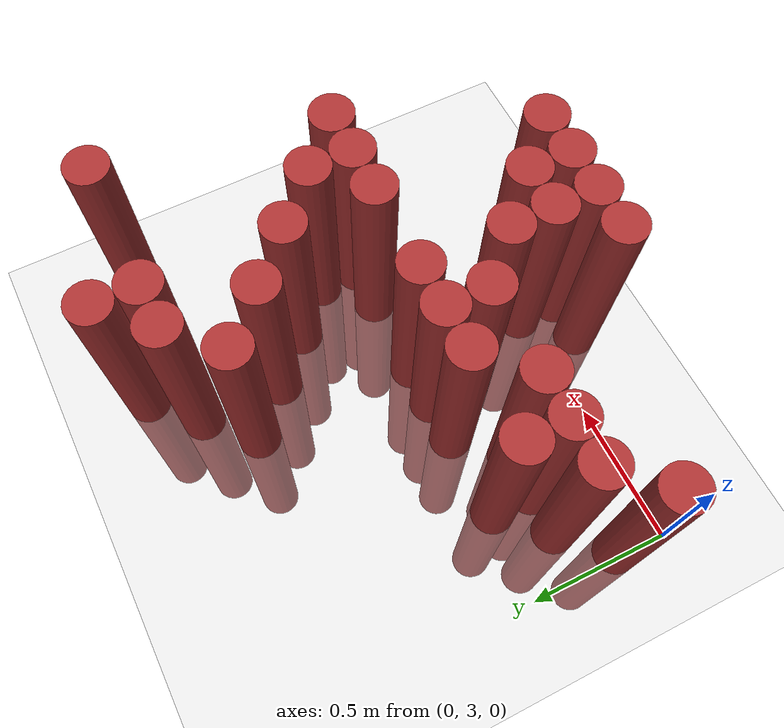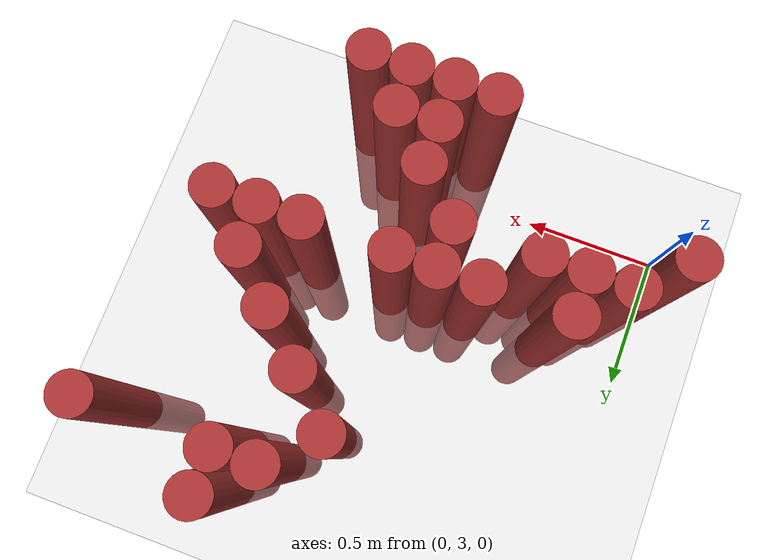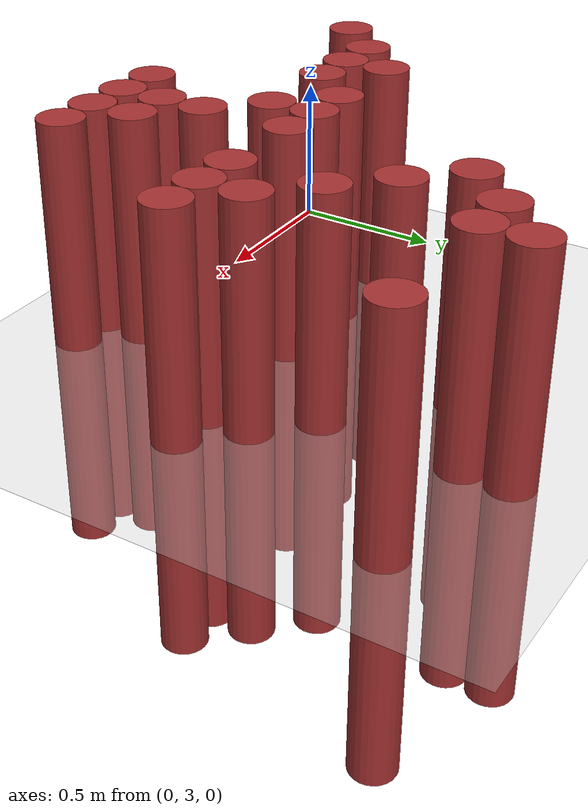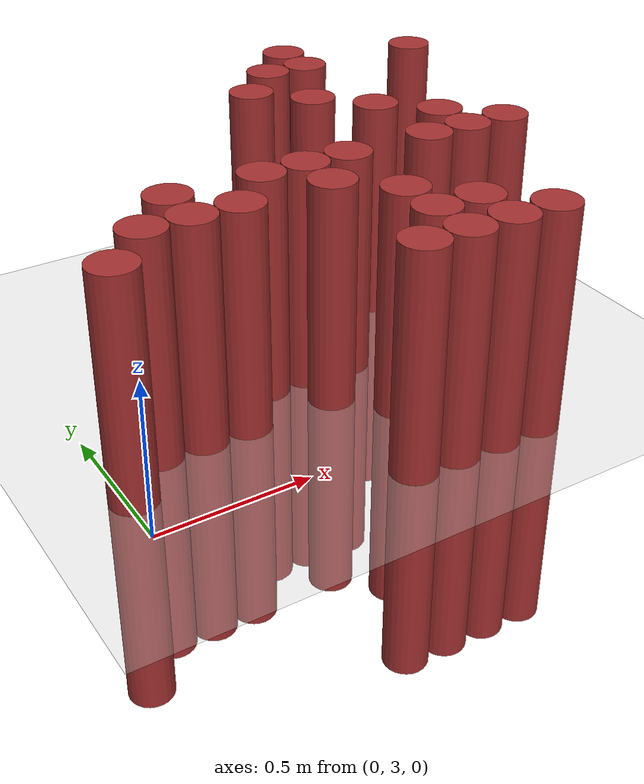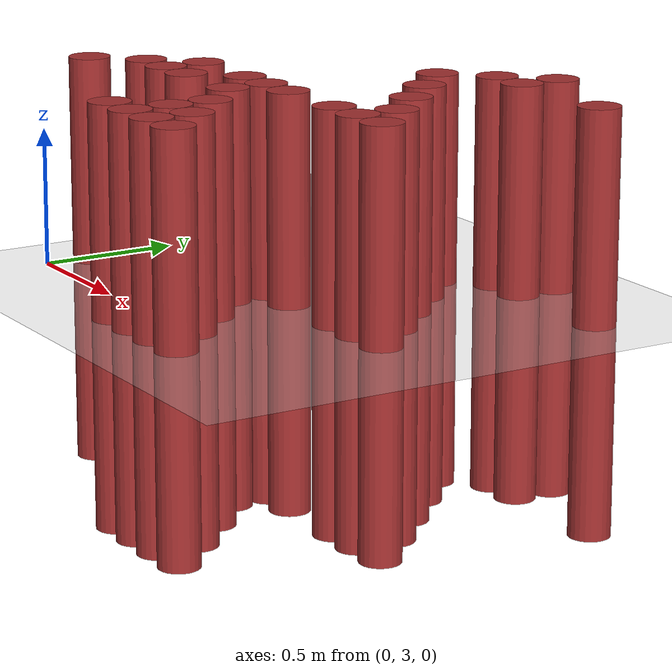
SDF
<sdf version="1.6">
 <world name="default">
  <model name="ground_plane">
   <static>1</static>
   <link name="link">
    <collision name="collision">
     <geometry><plane><normal>0 0 1</normal><size>100 100</size></plane></geometry>
     <surface><friction><ode><mu>100</mu><mu2>50</mu2></ode></friction></surface>
    </collision>
    <visual name="visual">
     <cast_shadows>0</cast_shadows>
     <geometry><plane><normal>0 0 1</normal><size>100 100</size></plane></geometry>
     <material>
      <script><uri>file://media/materials/scripts/gazebo.material</uri><name>Gazebo/Grey</name></script>
     </material>
    </visual>
   </link>
  </model>
  <model name="unit_cylinder_167">
   <static>1</static>
   <pose>0.025000 3.175000 0.000000 0.000000 0.000000 0.000000</pose>
   <link name="link">
    <inertial>
     <mass>1</mass>
     <inertia><ixx>0.145833</ixx><ixy>0</ixy><ixz>0</ixz><iyy>0.145833</iyy><iyz>0</iyz><izz>0.125</izz></inertia>
    </inertial>
    <collision name="collision">
     <geometry><cylinder><radius>0.075000</radius><length>1.5</length></cylinder></geometry>
    </collision>
    <visual name="visual">
     <geometry><cylinder><radius>0.075000</radius><length>1.5</length></cylinder></geometry>
     <material>
      <ambient>0.648000 0.192000 0.192000 1</ambient>
      <diffuse>0.648000 0.192000 0.192000 1</diffuse>
     </material>
     <material>
      <script><name>Gazebo/Grey</name><uri>file://media/materials/scripts/gazebo.material</uri></script>
     </material>
    </visual>
   </link>
  </model>
  <model name="unit_cylinder_168">
   <static>1</static>
   <pose>0.175000 3.325000 0.000000 0.000000 0.000000 0.000000</pose>
   <link name="link">
    <inertial>
     <mass>1</mass>
     <inertia><ixx>0.145833</ixx><ixy>0</ixy><ixz>0</ixz><iyy>0.145833</iyy><iyz>0</iyz><izz>0.125</izz></inertia>
    </inertial>
    <collision name="collision">
     <geometry><cylinder><radius>0.075000</radius><length>1.5</length></cylinder></geometry>
    </collision>
    <visual name="visual">
     <geometry><cylinder><radius>0.075000</radius><length>1.5</length></cylinder></geometry>
     <material>
      <ambient>0.648000 0.192000 0.192000 1</ambient>
      <diffuse>0.648000 0.192000 0.192000 1</diffuse>
     </material>
     <material>
      <script><name>Gazebo/Grey</name><uri>file://media/materials/scripts/gazebo.material</uri></script>
     </material>
    </visual>
   </link>
  </model>
  <model name="unit_cylinder_169">
   <static>1</static>
   <pose>0.325000 3.325000 0.000000 0.000000 0.000000 0.000000</pose>
   <link name="link">
    <inertial>
     <mass>1</mass>
     <inertia><ixx>0.145833</ixx><ixy>0</ixy><ixz>0</ixz><iyy>0.145833</iyy><iyz>0</iyz><izz>0.125</izz></inertia>
    </inertial>
    <collision name="collision">
     <geometry><cylinder><radius>0.075000</radius><length>1.5</length></cylinder></geometry>
    </collision>
    <visual name="visual">
     <geometry><cylinder><radius>0.075000</radius><length>1.5</length></cylinder></geometry>
     <material>
      <ambient>0.648000 0.192000 0.192000 1</ambient>
      <diffuse>0.648000 0.192000 0.192000 1</diffuse>
     </material>
     <material>
      <script><name>Gazebo/Grey</name><uri>file://media/materials/scripts/gazebo.material</uri></script>
     </material>
    </visual>
   </link>
  </model>
  <model name="unit_cylinder_170">
   <static>1</static>
   <pose>0.325000 3.475000 0.000000 0.000000 0.000000 0.000000</pose>
   <link name="link">
    <inertial>
     <mass>1</mass>
     <inertia><ixx>0.145833</ixx><ixy>0</ixy><ixz>0</ixz><iyy>0.145833</iyy><iyz>0</iyz><izz>0.125</izz></inertia>
    </inertial>
    <collision name="collision">
     <geometry><cylinder><radius>0.075000</radius><length>1.5</length></cylinder></geometry>
    </collision>
    <visual name="visual">
     <geometry><cylinder><radius>0.075000</radius><length>1.5</length></cylinder></geometry>
     <material>
      <ambient>0.648000 0.192000 0.192000 1</ambient>
      <diffuse>0.648000 0.192000 0.192000 1</diffuse>
     </material>
     <material>
      <script><name>Gazebo/Grey</name><uri>file://media/materials/scripts/gazebo.material</uri></script>
     </material>
    </visual>
   </link>
  </model>
  <model name="unit_cylinder_171">
   <static>1</static>
   <pose>0.475000 3.325000 0.000000 0.000000 0.000000 0.000000</pose>
   <link name="link">
    <inertial>
     <mass>1</mass>
     <inertia><ixx>0.145833</ixx><ixy>0</ixy><ixz>0</ixz><iyy>0.145833</iyy><iyz>0</iyz><izz>0.125</izz></inertia>
    </inertial>
    <collision name="collision">
     <geometry><cylinder><radius>0.075000</radius><length>1.5</length></cylinder></geometry>
    </collision>
    <visual name="visual">
     <geometry><cylinder><radius>0.075000</radius><length>1.5</length></cylinder></geometry>
     <material>
      <ambient>0.648000 0.192000 0.192000 1</ambient>
      <diffuse>0.648000 0.192000 0.192000 1</diffuse>
     </material>
     <material>
      <script><name>Gazebo/Grey</name><uri>file://media/materials/scripts/gazebo.material</uri></script>
     </material>
    </visual>
   </link>
  </model>
  <model name="unit_cylinder_172">
   <static>1</static>
   <pose>0.625000 3.475000 0.000000 0.000000 0.000000 0.000000</pose>
   <link name="link">
    <inertial>
     <mass>1</mass>
     <inertia><ixx>0.145833</ixx><ixy>0</ixy><ixz>0</ixz><iyy>0.145833</iyy><iyz>0</iyz><izz>0.125</izz></inertia>
    </inertial>
    <collision name="collision">
     <geometry><cylinder><radius>0.075000</radius><length>1.5</length></cylinder></geometry>
    </collision>
    <visual name="visual">
     <geometry><cylinder><radius>0.075000</radius><length>1.5</length></cylinder></geometry>
     <material>
      <ambient>0.648000 0.192000 0.192000 1</ambient>
      <diffuse>0.648000 0.192000 0.192000 1</diffuse>
     </material>
     <material>
      <script><name>Gazebo/Grey</name><uri>file://media/materials/scripts/gazebo.material</uri></script>
     </material>
    </visual>
   </link>
  </model>
  <model name="unit_cylinder_173">
   <static>1</static>
   <pose>0.775000 2.875000 0.000000 0.000000 0.000000 0.000000</pose>
   <link name="link">
    <inertial>
     <mass>1</mass>
     <inertia><ixx>0.145833</ixx><ixy>0</ixy><ixz>0</ixz><iyy>0.145833</iyy><iyz>0</iyz><izz>0.125</izz></inertia>
    </inertial>
    <collision name="collision">
     <geometry><cylinder><radius>0.075000</radius><length>1.5</length></cylinder></geometry>
    </collision>
    <visual name="visual">
     <geometry><cylinder><radius>0.075000</radius><length>1.5</length></cylinder></geometry>
     <material>
      <ambient>0.648000 0.192000 0.192000 1</ambient>
      <diffuse>0.648000 0.192000 0.192000 1</diffuse>
     </material>
     <material>
      <script><name>Gazebo/Grey</name><uri>file://media/materials/scripts/gazebo.material</uri></script>
     </material>
    </visual>
   </link>
  </model>
  <model name="unit_cylinder_174">
   <static>1</static>
   <pose>0.775000 3.325000 0.000000 0.000000 0.000000 0.000000</pose>
   <link name="link">
    <inertial>
     <mass>1</mass>
     <inertia><ixx>0.145833</ixx><ixy>0</ixy><ixz>0</ixz><iyy>0.145833</iyy><iyz>0</iyz><izz>0.125</izz></inertia>
    </inertial>
    <collision name="collision">
     <geometry><cylinder><radius>0.075000</radius><length>1.5</length></cylinder></geometry>
    </collision>
    <visual name="visual">
     <geometry><cylinder><radius>0.075000</radius><length>1.5</length></cylinder></geometry>
     <material>
      <ambient>0.648000 0.192000 0.192000 1</ambient>
      <diffuse>0.648000 0.192000 0.192000 1</diffuse>
     </material>
     <material>
      <script><name>Gazebo/Grey</name><uri>file://media/materials/scripts/gazebo.material</uri></script>
     </material>
    </visual>
   </link>
  </model>
  <model name="unit_cylinder_175">
   <static>1</static>
   <pose>0.775000 3.475000 0.000000 0.000000 0.000000 0.000000</pose>
   <link name="link">
    <inertial>
     <mass>1</mass>
     <inertia><ixx>0.145833</ixx><ixy>0</ixy><ixz>0</ixz><iyy>0.145833</iyy><iyz>0</iyz><izz>0.125</izz></inertia>
    </inertial>
    <collision name="collision">
     <geometry><cylinder><radius>0.075000</radius><length>1.5</length></cylinder></geometry>
    </collision>
    <visual name="visual">
     <geometry><cylinder><radius>0.075000</radius><length>1.5</length></cylinder></geometry>
     <material>
      <ambient>0.648000 0.192000 0.192000 1</ambient>
      <diffuse>0.648000 0.192000 0.192000 1</diffuse>
     </material>
     <material>
      <script><name>Gazebo/Grey</name><uri>file://media/materials/scripts/gazebo.material</uri></script>
     </material>
    </visual>
   </link>
  </model>
  <model name="unit_cylinder_177">
   <static>1</static>
   <pose>0.925000 2.875000 0.000000 0.000000 0.000000 0.000000</pose>
   <link name="link">
    <inertial>
     <mass>1</mass>
     <inertia><ixx>0.145833</ixx><ixy>0</ixy><ixz>0</ixz><iyy>0.145833</iyy><iyz>0</iyz><izz>0.125</izz></inertia>
    </inertial>
    <collision name="collision">
     <geometry><cylinder><radius>0.075000</radius><length>1.5</length></cylinder></geometry>
    </collision>
    <visual name="visual">
     <geometry><cylinder><radius>0.075000</radius><length>1.5</length></cylinder></geometry>
     <material>
      <ambient>0.648000 0.192000 0.192000 1</ambient>
      <diffuse>0.648000 0.192000 0.192000 1</diffuse>
     </material>
     <material>
      <script><name>Gazebo/Grey</name><uri>file://media/materials/scripts/gazebo.material</uri></script>
     </material>
    </visual>
   </link>
  </model>
  <model name="unit_cylinder_178">
   <static>1</static>
   <pose>0.925000 3.025000 0.000000 0.000000 0.000000 0.000000</pose>
   <link name="link">
    <inertial>
     <mass>1</mass>
     <inertia><ixx>0.145833</ixx><ixy>0</ixy><ixz>0</ixz><iyy>0.145833</iyy><iyz>0</iyz><izz>0.125</izz></inertia>
    </inertial>
    <collision name="collision">
     <geometry><cylinder><radius>0.075000</radius><length>1.5</length></cylinder></geometry>
    </collision>
    <visual name="visual">
     <geometry><cylinder><radius>0.075000</radius><length>1.5</length></cylinder></geometry>
     <material>
      <ambient>0.648000 0.192000 0.192000 1</ambient>
      <diffuse>0.648000 0.192000 0.192000 1</diffuse>
     </material>
     <material>
      <script><name>Gazebo/Grey</name><uri>file://media/materials/scripts/gazebo.material</uri></script>
     </material>
    </visual>
   </link>
  </model>
  <model name="unit_cylinder_179">
   <static>1</static>
   <pose>0.925000 3.175000 0.000000 0.000000 0.000000 0.000000</pose>
   <link name="link">
    <inertial>
     <mass>1</mass>
     <inertia><ixx>0.145833</ixx><ixy>0</ixy><ixz>0</ixz><iyy>0.145833</iyy><iyz>0</iyz><izz>0.125</izz></inertia>
    </inertial>
    <collision name="collision">
     <geometry><cylinder><radius>0.075000</radius><length>1.5</length></cylinder></geometry>
    </collision>
    <visual name="visual">
     <geometry><cylinder><radius>0.075000</radius><length>1.5</length></cylinder></geometry>
     <material>
      <ambient>0.648000 0.192000 0.192000 1</ambient>
      <diffuse>0.648000 0.192000 0.192000 1</diffuse>
     </material>
     <material>
      <script><name>Gazebo/Grey</name><uri>file://media/materials/scripts/gazebo.material</uri></script>
     </material>
    </visual>
   </link>
  </model>
  <model name="unit_cylinder_180">
   <static>1</static>
   <pose>0.925000 3.475000 0.000000 0.000000 0.000000 0.000000</pose>
   <link name="link">
    <inertial>
     <mass>1</mass>
     <inertia><ixx>0.145833</ixx><ixy>0</ixy><ixz>0</ixz><iyy>0.145833</iyy><iyz>0</iyz><izz>0.125</izz></inertia>
    </inertial>
    <collision name="collision">
     <geometry><cylinder><radius>0.075000</radius><length>1.5</length></cylinder></geometry>
    </collision>
    <visual name="visual">
     <geometry><cylinder><radius>0.075000</radius><length>1.5</length></cylinder></geometry>
     <material>
      <ambient>0.648000 0.192000 0.192000 1</ambient>
      <diffuse>0.648000 0.192000 0.192000 1</diffuse>
     </material>
     <material>
      <script><name>Gazebo/Grey</name><uri>file://media/materials/scripts/gazebo.material</uri></script>
     </material>
    </visual>
   </link>
  </model>
  <model name="unit_cylinder_181">
   <static>1</static>
   <pose>0.925000 4.075000 0.000000 0.000000 0.000000 0.000000</pose>
   <link name="link">
    <inertial>
     <mass>1</mass>
     <inertia><ixx>0.145833</ixx><ixy>0</ixy><ixz>0</ixz><iyy>0.145833</iyy><iyz>0</iyz><izz>0.125</izz></inertia>
    </inertial>
    <collision name="collision">
     <geometry><cylinder><radius>0.075000</radius><length>1.5</length></cylinder></geometry>
    </collision>
    <visual name="visual">
     <geometry><cylinder><radius>0.075000</radius><length>1.5</length></cylinder></geometry>
     <material>
      <ambient>0.648000 0.192000 0.192000 1</ambient>
      <diffuse>0.648000 0.192000 0.192000 1</diffuse>
     </material>
     <material>
      <script><name>Gazebo/Grey</name><uri>file://media/materials/scripts/gazebo.material</uri></script>
     </material>
    </visual>
   </link>
  </model>
  <model name="unit_cylinder_185">
   <static>1</static>
   <pose>1.075000 2.875000 0.000000 0.000000 0.000000 0.000000</pose>
   <link name="link">
    <inertial>
     <mass>1</mass>
     <inertia><ixx>0.145833</ixx><ixy>0</ixy><ixz>0</ixz><iyy>0.145833</iyy><iyz>0</iyz><izz>0.125</izz></inertia>
    </inertial>
    <collision name="collision">
     <geometry><cylinder><radius>0.075000</radius><length>1.5</length></cylinder></geometry>
    </collision>
    <visual name="visual">
     <geometry><cylinder><radius>0.075000</radius><length>1.5</length></cylinder></geometry>
     <material>
      <ambient>0.648000 0.192000 0.192000 1</ambient>
      <diffuse>0.648000 0.192000 0.192000 1</diffuse>
     </material>
     <material>
      <script><name>Gazebo/Grey</name><uri>file://media/materials/scripts/gazebo.material</uri></script>
     </material>
    </visual>
   </link>
  </model>
  <model name="unit_cylinder_186">
   <static>1</static>
   <pose>1.075000 3.025000 0.000000 0.000000 0.000000 0.000000</pose>
   <link name="link">
    <inertial>
     <mass>1</mass>
     <inertia><ixx>0.145833</ixx><ixy>0</ixy><ixz>0</ixz><iyy>0.145833</iyy><iyz>0</iyz><izz>0.125</izz></inertia>
    </inertial>
    <collision name="collision">
     <geometry><cylinder><radius>0.075000</radius><length>1.5</length></cylinder></geometry>
    </collision>
    <visual name="visual">
     <geometry><cylinder><radius>0.075000</radius><length>1.5</length></cylinder></geometry>
     <material>
      <ambient>0.648000 0.192000 0.192000 1</ambient>
      <diffuse>0.648000 0.192000 0.192000 1</diffuse>
     </material>
     <material>
      <script><name>Gazebo/Grey</name><uri>file://media/materials/scripts/gazebo.material</uri></script>
     </material>
    </visual>
   </link>
  </model>
  <model name="unit_cylinder_187">
   <static>1</static>
   <pose>1.075000 3.925000 0.000000 0.000000 0.000000 0.000000</pose>
   <link name="link">
    <inertial>
     <mass>1</mass>
     <inertia><ixx>0.145833</ixx><ixy>0</ixy><ixz>0</ixz><iyy>0.145833</iyy><iyz>0</iyz><izz>0.125</izz></inertia>
    </inertial>
    <collision name="collision">
     <geometry><cylinder><radius>0.075000</radius><length>1.5</length></cylinder></geometry>
    </collision>
    <visual name="visual">
     <geometry><cylinder><radius>0.075000</radius><length>1.5</length></cylinder></geometry>
     <material>
      <ambient>0.648000 0.192000 0.192000 1</ambient>
      <diffuse>0.648000 0.192000 0.192000 1</diffuse>
     </material>
     <material>
      <script><name>Gazebo/Grey</name><uri>file://media/materials/scripts/gazebo.material</uri></script>
     </material>
    </visual>
   </link>
  </model>
  <model name="unit_cylinder_188">
   <static>1</static>
   <pose>1.075000 4.225000 0.000000 0.000000 0.000000 0.000000</pose>
   <link name="link">
    <inertial>
     <mass>1</mass>
     <inertia><ixx>0.145833</ixx><ixy>0</ixy><ixz>0</ixz><iyy>0.145833</iyy><iyz>0</iyz><izz>0.125</izz></inertia>
    </inertial>
    <collision name="collision">
     <geometry><cylinder><radius>0.075000</radius><length>1.5</length></cylinder></geometry>
    </collision>
    <visual name="visual">
     <geometry><cylinder><radius>0.075000</radius><length>1.5</length></cylinder></geometry>
     <material>
      <ambient>0.648000 0.192000 0.192000 1</ambient>
      <diffuse>0.648000 0.192000 0.192000 1</diffuse>
     </material>
     <material>
      <script><name>Gazebo/Grey</name><uri>file://media/materials/scripts/gazebo.material</uri></script>
     </material>
    </visual>
   </link>
  </model>
  <model name="unit_cylinder_191">
   <static>1</static>
   <pose>1.225000 2.875000 0.000000 0.000000 0.000000 0.000000</pose>
   <link name="link">
    <inertial>
     <mass>1</mass>
     <inertia><ixx>0.145833</ixx><ixy>0</ixy><ixz>0</ixz><iyy>0.145833</iyy><iyz>0</iyz><izz>0.125</izz></inertia>
    </inertial>
    <collision name="collision">
     <geometry><cylinder><radius>0.075000</radius><length>1.5</length></cylinder></geometry>
    </collision>
    <visual name="visual">
     <geometry><cylinder><radius>0.075000</radius><length>1.5</length></cylinder></geometry>
     <material>
      <ambient>0.648000 0.192000 0.192000 1</ambient>
      <diffuse>0.648000 0.192000 0.192000 1</diffuse>
     </material>
     <material>
      <script><name>Gazebo/Grey</name><uri>file://media/materials/scripts/gazebo.material</uri></script>
     </material>
    </visual>
   </link>
  </model>
  <model name="unit_cylinder_192">
   <static>1</static>
   <pose>1.225000 3.475000 0.000000 0.000000 0.000000 0.000000</pose>
   <link name="link">
    <inertial>
     <mass>1</mass>
     <inertia><ixx>0.145833</ixx><ixy>0</ixy><ixz>0</ixz><iyy>0.145833</iyy><iyz>0</iyz><izz>0.125</izz></inertia>
    </inertial>
    <collision name="collision">
     <geometry><cylinder><radius>0.075000</radius><length>1.5</length></cylinder></geometry>
    </collision>
    <visual name="visual">
     <geometry><cylinder><radius>0.075000</radius><length>1.5</length></cylinder></geometry>
     <material>
      <ambient>0.648000 0.192000 0.192000 1</ambient>
      <diffuse>0.648000 0.192000 0.192000 1</diffuse>
     </material>
     <material>
      <script><name>Gazebo/Grey</name><uri>file://media/materials/scripts/gazebo.material</uri></script>
     </material>
    </visual>
   </link>
  </model>
  <model name="unit_cylinder_193">
   <static>1</static>
   <pose>1.225000 3.775000 0.000000 0.000000 0.000000 0.000000</pose>
   <link name="link">
    <inertial>
     <mass>1</mass>
     <inertia><ixx>0.145833</ixx><ixy>0</ixy><ixz>0</ixz><iyy>0.145833</iyy><iyz>0</iyz><izz>0.125</izz></inertia>
    </inertial>
    <collision name="collision">
     <geometry><cylinder><radius>0.075000</radius><length>1.5</length></cylinder></geometry>
    </collision>
    <visual name="visual">
     <geometry><cylinder><radius>0.075000</radius><length>1.5</length></cylinder></geometry>
     <material>
      <ambient>0.648000 0.192000 0.192000 1</ambient>
      <diffuse>0.648000 0.192000 0.192000 1</diffuse>
     </material>
     <material>
      <script><name>Gazebo/Grey</name><uri>file://media/materials/scripts/gazebo.material</uri></script>
     </material>
    </visual>
   </link>
  </model>
  <model name="unit_cylinder_194">
   <static>1</static>
   <pose>1.225000 4.225000 0.000000 0.000000 0.000000 0.000000</pose>
   <link name="link">
    <inertial>
     <mass>1</mass>
     <inertia><ixx>0.145833</ixx><ixy>0</ixy><ixz>0</ixz><iyy>0.145833</iyy><iyz>0</iyz><izz>0.125</izz></inertia>
    </inertial>
    <collision name="collision">
     <geometry><cylinder><radius>0.075000</radius><length>1.5</length></cylinder></geometry>
    </collision>
    <visual name="visual">
     <geometry><cylinder><radius>0.075000</radius><length>1.5</length></cylinder></geometry>
     <material>
      <ambient>0.648000 0.192000 0.192000 1</ambient>
      <diffuse>0.648000 0.192000 0.192000 1</diffuse>
     </material>
     <material>
      <script><name>Gazebo/Grey</name><uri>file://media/materials/scripts/gazebo.material</uri></script>
     </material>
    </visual>
   </link>
  </model>
  <model name="unit_cylinder_195">
   <static>1</static>
   <pose>1.225000 4.375000 0.000000 0.000000 0.000000 0.000000</pose>
   <link name="link">
    <inertial>
     <mass>1</mass>
     <inertia><ixx>0.145833</ixx><ixy>0</ixy><ixz>0</ixz><iyy>0.145833</iyy><iyz>0</iyz><izz>0.125</izz></inertia>
    </inertial>
    <collision name="collision">
     <geometry><cylinder><radius>0.075000</radius><length>1.5</length></cylinder></geometry>
    </collision>
    <visual name="visual">
     <geometry><cylinder><radius>0.075000</radius><length>1.5</length></cylinder></geometry>
     <material>
      <ambient>0.648000 0.192000 0.192000 1</ambient>
      <diffuse>0.648000 0.192000 0.192000 1</diffuse>
     </material>
     <material>
      <script><name>Gazebo/Grey</name><uri>file://media/materials/scripts/gazebo.material</uri></script>
     </material>
    </visual>
   </link>
  </model>
  <model name="unit_cylinder_196">
   <static>1</static>
   <pose>1.375000 3.475000 0.000000 0.000000 0.000000 0.000000</pose>
   <link name="link">
    <inertial>
     <mass>1</mass>
     <inertia><ixx>0.145833</ixx><ixy>0</ixy><ixz>0</ixz><iyy>0.145833</iyy><iyz>0</iyz><izz>0.125</izz></inertia>
    </inertial>
    <collision name="collision">
     <geometry><cylinder><radius>0.075000</radius><length>1.5</length></cylinder></geometry>
    </collision>
    <visual name="visual">
     <geometry><cylinder><radius>0.075000</radius><length>1.5</length></cylinder></geometry>
     <material>
      <ambient>0.648000 0.192000 0.192000 1</ambient>
      <diffuse>0.648000 0.192000 0.192000 1</diffuse>
     </material>
     <material>
      <script><name>Gazebo/Grey</name><uri>file://media/materials/scripts/gazebo.material</uri></script>
     </material>
    </visual>
   </link>
  </model>
  <model name="unit_cylinder_197">
   <static>1</static>
   <pose>1.375000 3.625000 0.000000 0.000000 0.000000 0.000000</pose>
   <link name="link">
    <inertial>
     <mass>1</mass>
     <inertia><ixx>0.145833</ixx><ixy>0</ixy><ixz>0</ixz><iyy>0.145833</iyy><iyz>0</iyz><izz>0.125</izz></inertia>
    </inertial>
    <collision name="collision">
     <geometry><cylinder><radius>0.075000</radius><length>1.5</length></cylinder></geometry>
    </collision>
    <visual name="visual">
     <geometry><cylinder><radius>0.075000</radius><length>1.5</length></cylinder></geometry>
     <material>
      <ambient>0.648000 0.192000 0.192000 1</ambient>
      <diffuse>0.648000 0.192000 0.192000 1</diffuse>
     </material>
     <material>
      <script><name>Gazebo/Grey</name><uri>file://media/materials/scripts/gazebo.material</uri></script>
     </material>
    </visual>
   </link>
  </model>
  <model name="unit_cylinder_199">
   <static>1</static>
   <pose>1.525000 3.475000 0.000000 0.000000 0.000000 0.000000</pose>
   <link name="link">
    <inertial>
     <mass>1</mass>
     <inertia><ixx>0.145833</ixx><ixy>0</ixy><ixz>0</ixz><iyy>0.145833</iyy><iyz>0</iyz><izz>0.125</izz></inertia>
    </inertial>
    <collision name="collision">
     <geometry><cylinder><radius>0.075000</radius><length>1.5</length></cylinder></geometry>
    </collision>
    <visual name="visual">
     <geometry><cylinder><radius>0.075000</radius><length>1.5</length></cylinder></geometry>
     <material>
      <ambient>0.648000 0.192000 0.192000 1</ambient>
      <diffuse>0.648000 0.192000 0.192000 1</diffuse>
     </material>
     <material>
      <script><name>Gazebo/Grey</name><uri>file://media/materials/scripts/gazebo.material</uri></script>
     </material>
    </visual>
   </link>
  </model>
  <model name="unit_cylinder_206">
   <static>1</static>
   <pose>1.675000 4.225000 0.000000 0.000000 0.000000 0.000000</pose>
   <link name="link">
    <inertial>
     <mass>1</mass>
     <inertia><ixx>0.145833</ixx><ixy>0</ixy><ixz>0</ixz><iyy>0.145833</iyy><iyz>0</iyz><izz>0.125</izz></inertia>
    </inertial>
    <collision name="collision">
     <geometry><cylinder><radius>0.075000</radius><length>1.5</length></cylinder></geometry>
    </collision>
    <visual name="visual">
     <geometry><cylinder><radius>0.075000</radius><length>1.5</length></cylinder></geometry>
     <material>
      <ambient>0.648000 0.192000 0.192000 1</ambient>
      <diffuse>0.648000 0.192000 0.192000 1</diffuse>
     </material>
     <material>
      <script><name>Gazebo/Grey</name><uri>file://media/materials/scripts/gazebo.material</uri></script>
     </material>
    </visual>
   </link>
  </model>
 </world>
</sdf>
